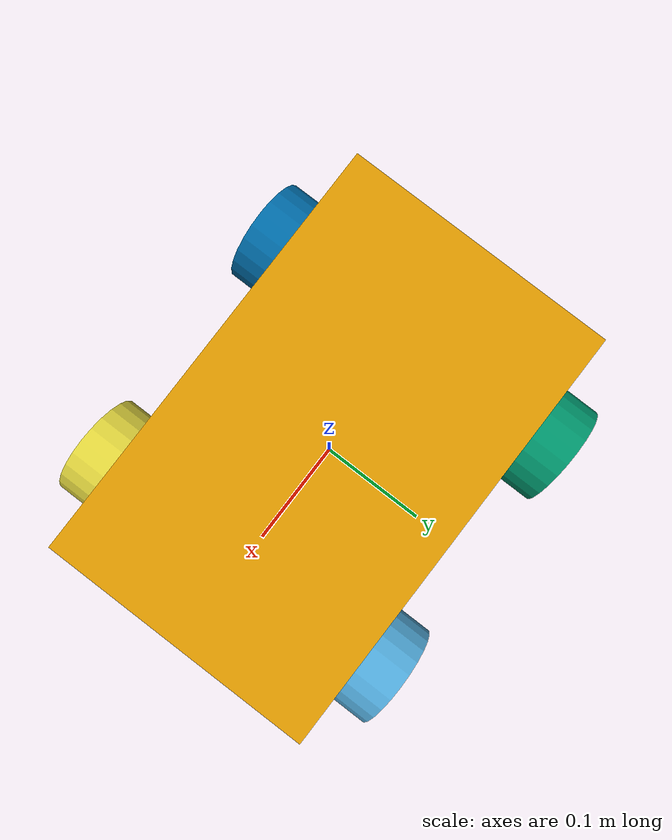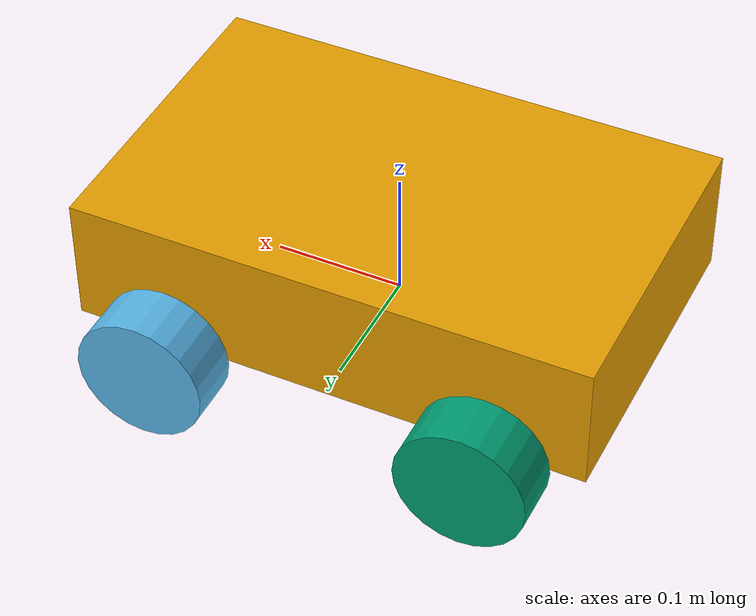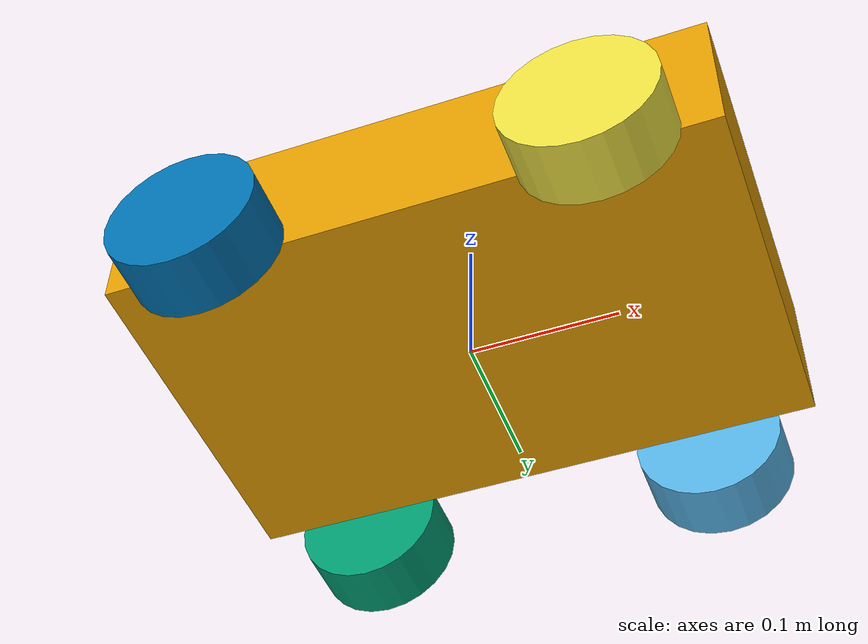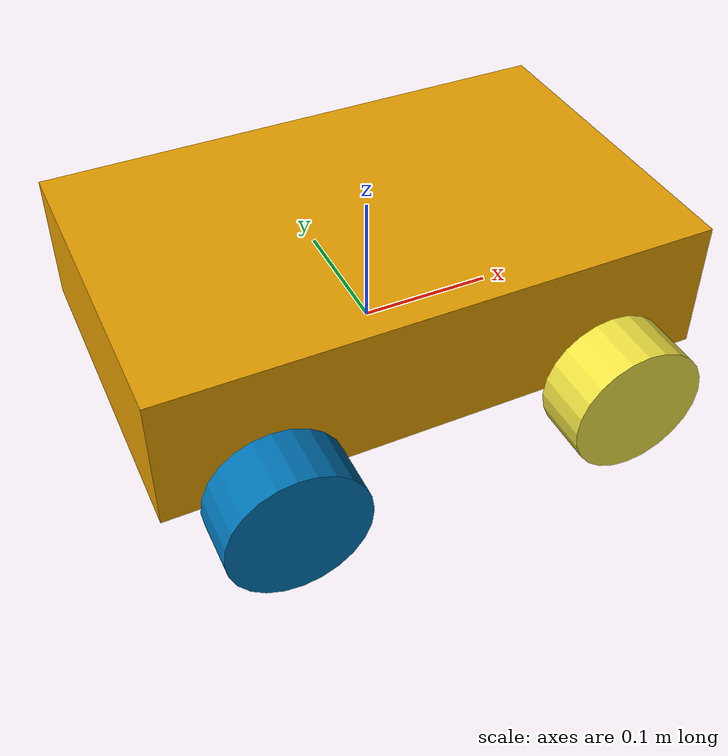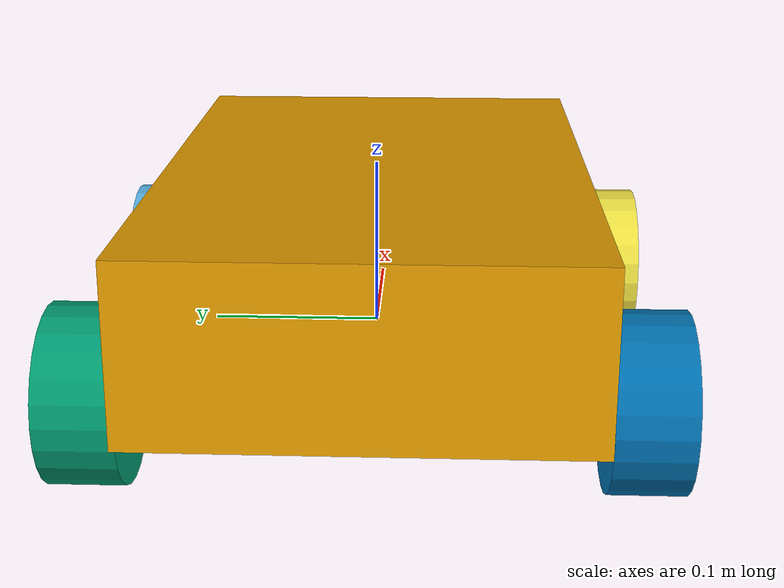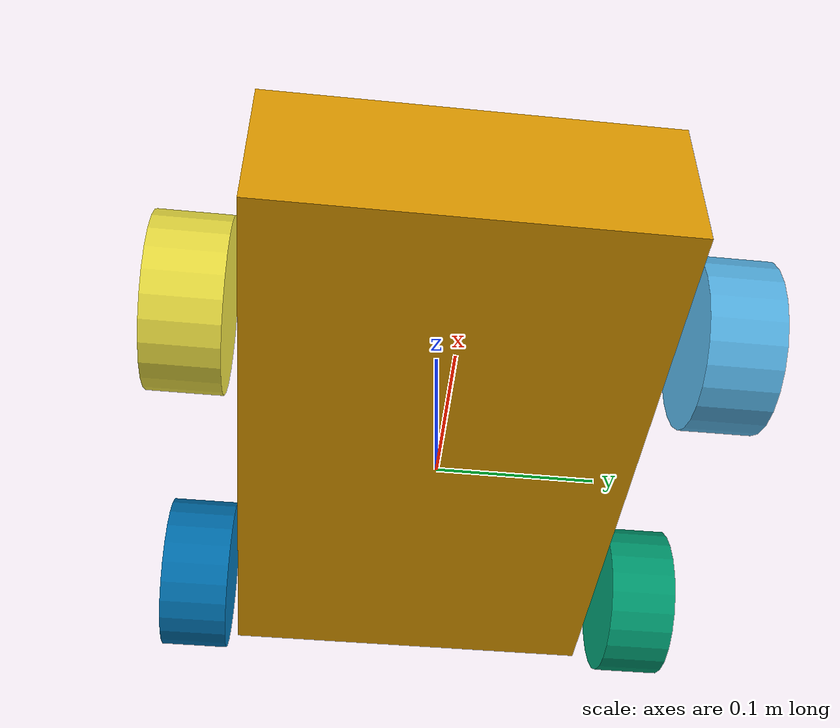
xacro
<?xml version="1.0"?>
<robot name="ddsm_robot" xmlns:xacro="http://www.ros.org/wiki/xacro">

  <xacro:arg name="wheels" default="4"/>
  <xacro:arg name="port" default="/dev/ttyUSB0"/>
  <xacro:arg name="motor_ids" default="1,2,3,4"/>
  <xacro:arg name="motor_directions" default="1,1,-1,-1"/>
  <xacro:arg name="motor_trims" default="1.0,1.0,1.0,1.0"/>

  <xacro:property name="four_wheels" value="${'$(arg wheels)' == '4'}"/>
  <!-- DDSM115 tyre 100.7 mm diameter and 43 mm wide -->
  <xacro:property name="wheel_radius" value="0.05"/>
  <xacro:property name="wheel_width" value="0.043"/>
  <xacro:property name="track" value="0.30"/>
  <xacro:property name="wheelbase" value="0.25"/>

  <link name="base_link">
    <visual>
      <origin xyz="0 0 0.05"/>
      <geometry><box size="0.40 0.25 0.10"/></geometry>
    </visual>
  </link>

  <xacro:macro name="wheel" params="name x y">
    <link name="${name}_wheel">
      <visual>
        <origin rpy="${pi/2} 0 0"/>
        <geometry><cylinder radius="${wheel_radius}" length="${wheel_width}"/></geometry>
      </visual>
    </link>
    <!-- Every wheel turns about +y, so a positive joint velocity drives forward -->
    <joint name="${name}_wheel_joint" type="continuous">
      <parent link="base_link"/>
      <child link="${name}_wheel"/>
      <origin xyz="${x} ${y} 0"/>
      <axis xyz="0 1 0"/>
    </joint>
  </xacro:macro>

  <xacro:macro name="wheel_interfaces" params="name">
    <joint name="${name}_wheel_joint">
      <command_interface name="velocity"/>
      <state_interface name="velocity"/>
      <state_interface name="position"/>
    </joint>
  </xacro:macro>

  <xacro:if value="${four_wheels}">
    <xacro:wheel name="front_left" x="${wheelbase/2}" y="${track/2}"/>
    <xacro:wheel name="rear_left" x="${-wheelbase/2}" y="${track/2}"/>
    <xacro:wheel name="front_right" x="${wheelbase/2}" y="${-track/2}"/>
    <xacro:wheel name="rear_right" x="${-wheelbase/2}" y="${-track/2}"/>
  </xacro:if>
  <xacro:unless value="${four_wheels}">
    <xacro:wheel name="left" x="0" y="${track/2}"/>
    <xacro:wheel name="right" x="0" y="${-track/2}"/>
  </xacro:unless>

  <ros2_control name="DDSM115" type="system">
    <hardware>
      <plugin>ddsm_hardware/DDSMHardwareInterface</plugin>
      <param name="port">$(arg port)</param>
      <param name="rpm_limit">330</param>
      <param name="accel_time">0</param>
      <param name="brake">0</param>
      <param name="motor_ids">$(arg motor_ids)</param>
      <param name="motor_directions">$(arg motor_directions)</param>
      <param name="motor_trims">$(arg motor_trims)</param>
    </hardware>
    <xacro:if value="${four_wheels}">
      <xacro:wheel_interfaces name="front_left"/>
      <xacro:wheel_interfaces name="rear_left"/>
      <xacro:wheel_interfaces name="front_right"/>
      <xacro:wheel_interfaces name="rear_right"/>
    </xacro:if>
    <xacro:unless value="${four_wheels}">
      <xacro:wheel_interfaces name="left"/>
      <xacro:wheel_interfaces name="right"/>
    </xacro:unless>
  </ros2_control>

</robot>
